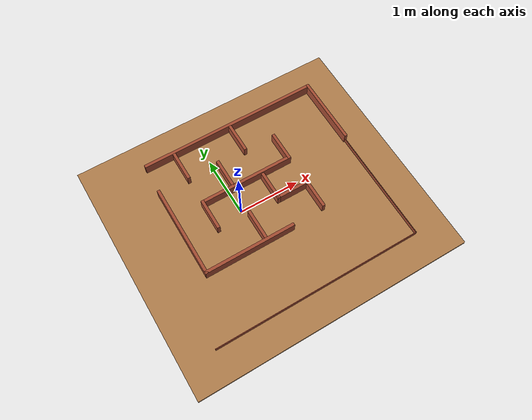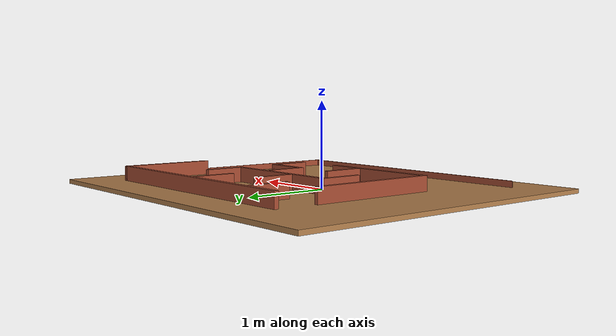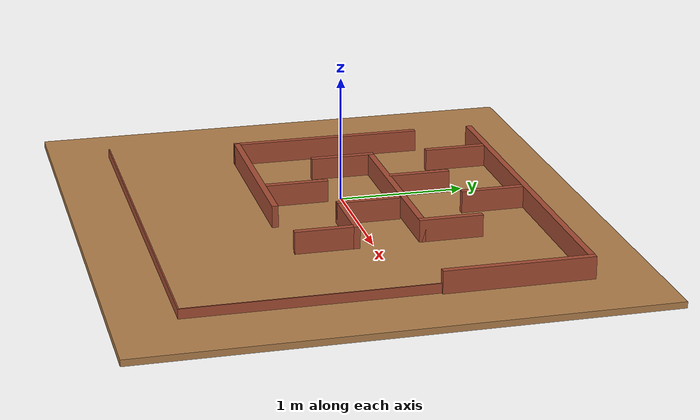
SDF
<?xml version='1.0'?>
<sdf version='1.6'>
  <model name='maze'>
    <pose frame=''>0.36 -0.145 0 0 -0 0</pose>
     <link name='ground_link'>
      <collision name='ground_collision'>
        <geometry>
          <box>
            <size>4.5 4 0.05</size>
          </box>
        </geometry>
        <surface>
          <friction>
            <ode>
              <mu>100</mu>
              <mu2>50</mu2>
            </ode>
          </friction>
        </surface>
      </collision>
      <visual name='ground_visual'>
        <geometry>
          <box>
            <size>4.5 4 0.05</size>
          </box>
        </geometry>
        <material>
          <script>
            <uri>file://media/materials/scripts/gazebo.material</uri>
            <name>Gazebo/WoodFloor</name>
          </script>
        </material>
      </visual>
    </link>
    <link name='Wall_13'>
      <collision name='Wall_13_Collision'>
        <geometry>
          <box>
            <size>0.5 0.05 0.2</size>
          </box>
        </geometry>
        <pose frame=''>0 0 0.1 0 -0 0</pose>
      </collision>
      <visual name='Wall_13_Visual'>
        <pose frame=''>0 0 0.1 0 -0 0</pose>
        <geometry>
          <box>
            <size>0.5 0.05 0.2</size>
          </box>
        </geometry>
        <material>
          <script>
            <uri>file://media/materials/scripts/gazebo.material</uri>
            <name>Gazebo/Bricks</name>
          </script>
          <ambient>1 1 1 1</ambient>
        </material>
        <meta>
          <layer>0</layer>
        </meta>
      </visual>
      <pose frame=''>0.2 1.22 0 0 -0 -1.5708</pose>
    </link>
    <link name='Wall_16'>
      <collision name='Wall_16_Collision'>
        <geometry>
          <box>
            <size>0.5 0.05 0.2</size>
          </box>
        </geometry>
        <pose frame=''>0 0 0.1 0 -0 0</pose>
      </collision>
      <visual name='Wall_16_Visual'>
        <pose frame=''>0 0 0.1 0 -0 0</pose>
        <geometry>
          <box>
            <size>0.5 0.05 0.2</size>
          </box>
        </geometry>
        <material>
          <script>
            <uri>file://media/materials/scripts/gazebo.material</uri>
            <name>Gazebo/Bricks</name>
          </script>
          <ambient>1 1 1 1</ambient>
        </material>
        <meta>
          <layer>0</layer>
        </meta>
      </visual>
      <pose frame=''>-0.8 1.22 0 0 -0 -1.5708</pose>
    </link>
    <link name='Wall_23'>
      <collision name='Wall_23_Collision'>
        <geometry>
          <box>
            <size>1.55 0.05 0.2</size>
          </box>
        </geometry>
        <pose frame=''>0 0 0.1 0 -0 0</pose>
      </collision>
      <visual name='Wall_23_Visual'>
        <pose frame=''>0 0 0.1 0 -0 0</pose>
        <geometry>
          <box>
            <size>1.55 0.05 0.2</size>
          </box>
        </geometry>
        <material>
          <script>
            <uri>file://media/materials/scripts/gazebo.material</uri>
            <name>Gazebo/Bricks</name>
          </script>
          <ambient>1 1 1 1</ambient>
        </material>
        <meta>
          <layer>0</layer>
        </meta>
      </visual>
      <pose frame=''>-1.3 0.245 0 0 -0 -1.5708</pose>
    </link>
    <link name='Wall_24'>
      <collision name='Wall_24_Collision'>
        <geometry>
          <box>
            <size>1.50352 0.05 0.2</size>
          </box>
        </geometry>
        <pose frame=''>0 0 0.1 0 -0 0</pose>
      </collision>
      <visual name='Wall_24_Visual'>
        <pose frame=''>0 0 0.1 0 -0 0</pose>
        <geometry>
          <box>
            <size>1.50352 0.05 0.2</size>
          </box>
        </geometry>
        <material>
          <script>
            <uri>file://media/materials/scripts/gazebo.material</uri>
            <name>Gazebo/Bricks</name>
          </script>
          <ambient>1 1 1 1</ambient>
        </material>
        <meta>
          <layer>0</layer>
        </meta>
      </visual>
      <pose frame=''>-0.573 -0.505 0 0 -0 0</pose>
    </link>
    <link name='Wall_26'>
      <collision name='Wall_26_Collision'>
        <geometry>
          <box>
            <size>0.5 0.05 0.2</size>
          </box>
        </geometry>
        <pose frame=''>0 0 0.1 0 -0 0</pose>
      </collision>
      <visual name='Wall_26_Visual'>
        <pose frame=''>0 0 0.1 0 -0 0</pose>
        <geometry>
          <box>
            <size>0.5 0.05 0.2</size>
          </box>
        </geometry>
        <material>
          <script>
            <uri>file://media/materials/scripts/gazebo.material</uri>
            <name>Gazebo/Bricks</name>
          </script>
          <ambient>1 1 1 1</ambient>
        </material>
        <meta>
          <layer>0</layer>
        </meta>
      </visual>
      <pose frame=''>-0.29 -0.23 0 0 -0 -1.5708</pose>
    </link>
    <link name='Wall_36'>
      <collision name='Wall_36_Collision'>
        <geometry>
          <box>
            <size>0.49 0.05 0.2</size>
          </box>
        </geometry>
        <pose frame=''>0 0 0.1 0 -0 0</pose>
      </collision>
      <visual name='Wall_36_Visual'>
        <pose frame=''>0 0 0.1 0 -0 0</pose>
        <geometry>
          <box>
            <size>0.49 0.05 0.2</size>
          </box>
        </geometry>
        <material>
          <script>
            <uri>file://media/materials/scripts/gazebo.material</uri>
            <name>Gazebo/Bricks</name>
          </script>
          <ambient>1 1 1 1</ambient>
        </material>
        <meta>
          <layer>0</layer>
        </meta>
      </visual>
      <pose frame=''>-0.28 0.765 0 0 -0 1.5708</pose>
    </link>
    <link name='Wall_42'>
      <collision name='Wall_42_Collision'>
        <geometry>
          <box>
            <size>0.52 0.05 0.2</size>
          </box>
        </geometry>
        <pose frame=''>0 0 0.1 0 -0 0</pose>
      </collision>
      <visual name='Wall_42_Visual'>
        <pose frame=''>0 0 0.1 0 -0 0</pose>
        <geometry>
          <box>
            <size>0.52 0.05 0.2</size>
          </box>
        </geometry>
        <material>
          <script>
            <uri>file://media/materials/scripts/gazebo.material</uri>
            <name>Gazebo/Bricks</name>
          </script>
          <ambient>1 1 1 1</ambient>
        </material>
        <meta>
          <layer>0</layer>
        </meta>
      </visual>
      <pose frame=''>-0.81 0.27 0 0 -0 1.5708</pose>
    </link>
    <link name='Wall_44'>
      <collision name='Wall_44_Collision'>
        <geometry>
          <box>
            <size>0.5 0.05 0.2</size>
          </box>
        </geometry>
        <pose frame=''>0 0 0.1 0 -0 0</pose>
      </collision>
      <visual name='Wall_44_Visual'>
        <pose frame=''>0 0 0.1 0 -0 0</pose>
        <geometry>
          <box>
            <size>0.5 0.05 0.2</size>
          </box>
        </geometry>
        <material>
          <script>
            <uri>file://media/materials/scripts/gazebo.material</uri>
            <name>Gazebo/Bricks</name>
          </script>
          <ambient>1 1 1 1</ambient>
        </material>
        <meta>
          <layer>0</layer>
        </meta>
      </visual>
      <pose frame=''>0.21 0.22 0 0 -0 -1.5708</pose>
    </link>
    <link name='Wall_45'>
      <collision name='Wall_45_Collision'>
        <geometry>
          <box>
            <size>0.56 0.05 0.2</size>
          </box>
        </geometry>
        <pose frame=''>0 0 0.1 0 -0 0</pose>
      </collision>
      <visual name='Wall_45_Visual'>
        <pose frame=''>0 0 0.1 0 -0 0</pose>
        <geometry>
          <box>
            <size>0.56 0.05 0.2</size>
          </box>
        </geometry>
        <material>
          <script>
            <uri>file://media/materials/scripts/gazebo.material</uri>
            <name>Gazebo/Bricks</name>
          </script>
          <ambient>1 1 1 1</ambient>
        </material>
        <meta>
          <layer>0</layer>
        </meta>
      </visual>
      <pose frame=''>0.465 -0.005 0 0 -0 0</pose>
    </link>
    <link name='Wall_51'>
      <collision name='Wall_51_Collision'>
        <geometry>
          <box>
            <size>0.5 0.05 0.2</size>
          </box>
        </geometry>
        <pose frame=''>0 0 0.1 0 -0 0</pose>
      </collision>
      <visual name='Wall_51_Visual'>
        <pose frame=''>0 0 0.1 0 -0 0</pose>
        <geometry>
          <box>
            <size>0.5 0.05 0.2</size>
          </box>
        </geometry>
        <material>
          <script>
            <uri>file://media/materials/scripts/gazebo.material</uri>
            <name>Gazebo/Bricks</name>
          </script>
          <ambient>1 1 1 1</ambient>
        </material>
        <meta>
          <layer>0</layer>
        </meta>
      </visual>
      <pose frame=''>0.72 -0.23 0 0 -0 1.5708</pose>
    </link>
    <link name='Wall_55'>
      <collision name='Wall_55_Collision'>
        <geometry>
          <box>
            <size>1.52 0.05 0.2</size>
          </box>
        </geometry>
        <pose frame=''>0 0 0.1 0 -0 0</pose>
      </collision>
      <visual name='Wall_55_Visual'>
        <pose frame=''>0 0 0.1 0 -0 0</pose>
        <geometry>
          <box>
            <size>1.52 0.05 0.2</size>
          </box>
        </geometry>
        <material>
          <script>
            <uri>file://media/materials/scripts/gazebo.material</uri>
            <name>Gazebo/Bricks</name>
          </script>
          <ambient>1 1 1 1</ambient>
        </material>
        <meta>
          <layer>0</layer>
        </meta>
      </visual>
      <pose frame=''>-0.025 0.505 0 0 -0 3.14159</pose>
    </link>
    <link name='Wall_57'>
      <collision name='Wall_57_Collision'>
        <geometry>
          <box>
            <size>0.5 0.05 0.2</size>
          </box>
        </geometry>
        <pose frame=''>0 0 0.1 0 -0 0</pose>
      </collision>
      <visual name='Wall_57_Visual'>
        <pose frame=''>0 0 0.1 0 -0 0</pose>
        <geometry>
          <box>
            <size>0.5 0.05 0.2</size>
          </box>
        </geometry>
        <material>
          <script>
            <uri>file://media/materials/scripts/gazebo.material</uri>
            <name>Gazebo/Bricks</name>
          </script>
          <ambient>1 1 1 1</ambient>
        </material>
        <meta>
          <layer>0</layer>
        </meta>
      </visual>
      <pose frame=''>0.71 0.73 0 0 -0 -1.5708</pose>
    </link>
    <link name='Wall_73'>
      <collision name='Wall_73_Collision'>
        <geometry>
          <box>
            <size>3.41 0.01 0.1</size>
          </box>
        </geometry>
        <pose frame=''>0 0 0.05 0 -0 0</pose>
      </collision>
      <visual name='Wall_73_Visual'>
        <pose frame=''>0 0 0.05 0 -0 0</pose>
        <geometry>
          <box>
            <size>3.41 0.01 0.1</size>
          </box>
        </geometry>
        <material>
          <script>
            <uri>file://media/materials/scripts/gazebo.material</uri>
            <name>Gazebo/Bricks</name>
          </script>
          <ambient>1 1 1 1</ambient>
        </material>
        <meta>
          <layer>0</layer>
        </meta>
      </visual>
      <pose frame=''>-0.01 -1.515 0 0 -0 0</pose>
    </link>
    <link name='Wall_74'>
      <collision name='Wall_74_Collision'>
        <geometry>
          <box>
            <size>1.92 0.01 0.1</size>
          </box>
        </geometry>
        <pose frame=''>0 0 0.05 0 -0 0</pose>
      </collision>
      <visual name='Wall_74_Visual'>
        <pose frame=''>0 0 0.05 0 -0 0</pose>
        <geometry>
          <box>
            <size>1.92 0.01 0.1</size>
          </box>
        </geometry>
        <material>
          <script>
            <uri>file://media/materials/scripts/gazebo.material</uri>
            <name>Gazebo/Bricks</name>
          </script>
          <ambient>1 1 1 1</ambient>
        </material>
        <meta>
          <layer>0</layer>
        </meta>
      </visual>
      <pose frame=''>1.69 -0.56 0 0 -0 1.5708</pose>
    </link>
    <link name='Wall_8'>
      <collision name='Wall_8_Collision'>
        <geometry>
          <box>
            <size>3.01 0.05 0.2</size>
          </box>
        </geometry>
        <pose frame=''>0 0 0.1 0 -0 0</pose>
      </collision>
      <visual name='Wall_8_Visual'>
        <pose frame=''>0 0 0.1 0 -0 0</pose>
        <geometry>
          <box>
            <size>3.01 0.05 0.2</size>
          </box>
        </geometry>
        <material>
          <script>
            <uri>file://media/materials/scripts/gazebo.material</uri>
            <name>Gazebo/Bricks</name>
          </script>
          <ambient>1 1 1 1</ambient>
        </material>
        <meta>
          <layer>0</layer>
        </meta>
      </visual>
      <pose frame=''>0.21 1.495 0 0 -0 0</pose>
    </link>
    <link name='Wall_9'>
      <collision name='Wall_9_Collision'>
        <geometry>
          <box>
            <size>1.15 0.05 0.2</size>
          </box>
        </geometry>
        <pose frame=''>0 0 0.1 0 -0 0</pose>
      </collision>
      <visual name='Wall_9_Visual'>
        <pose frame=''>0 0 0.1 0 -0 0</pose>
        <geometry>
          <box>
            <size>1.15 0.05 0.2</size>
          </box>
        </geometry>
        <material>
          <script>
            <uri>file://media/materials/scripts/gazebo.material</uri>
            <name>Gazebo/Bricks</name>
          </script>
          <ambient>1 1 1 1</ambient>
        </material>
        <meta>
          <layer>0</layer>
        </meta>
      </visual>
      <pose frame=''>1.69 0.945 0 0 -0 -1.5708</pose>
    </link>
    <static>1</static>
  </model>
</sdf>
